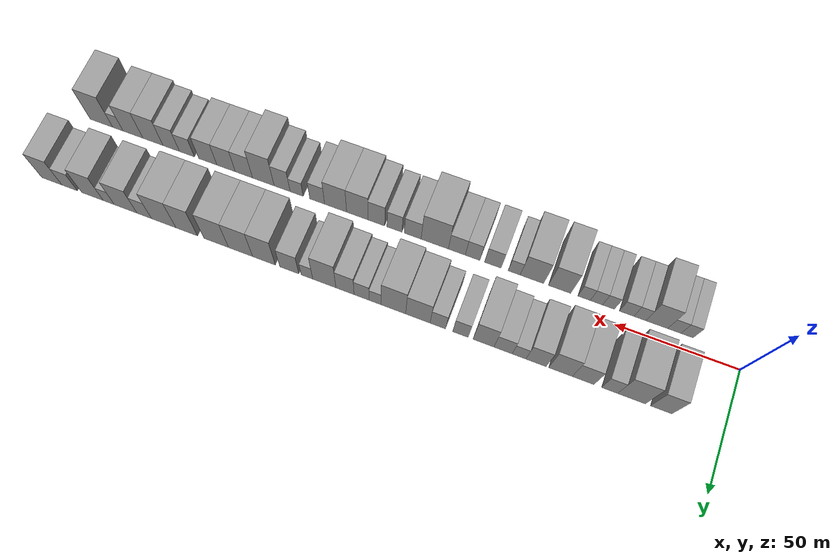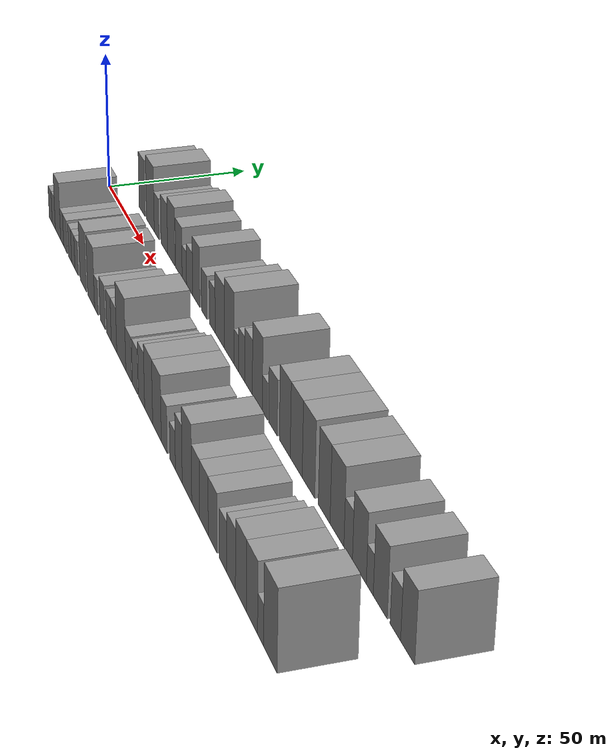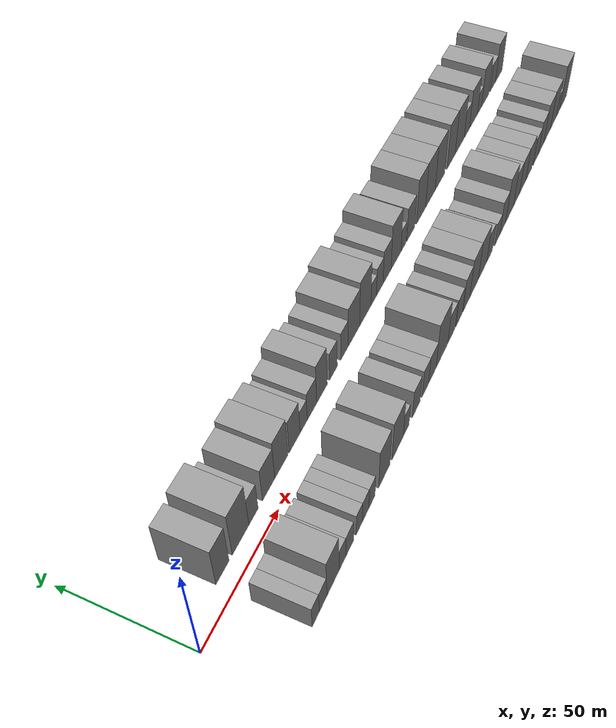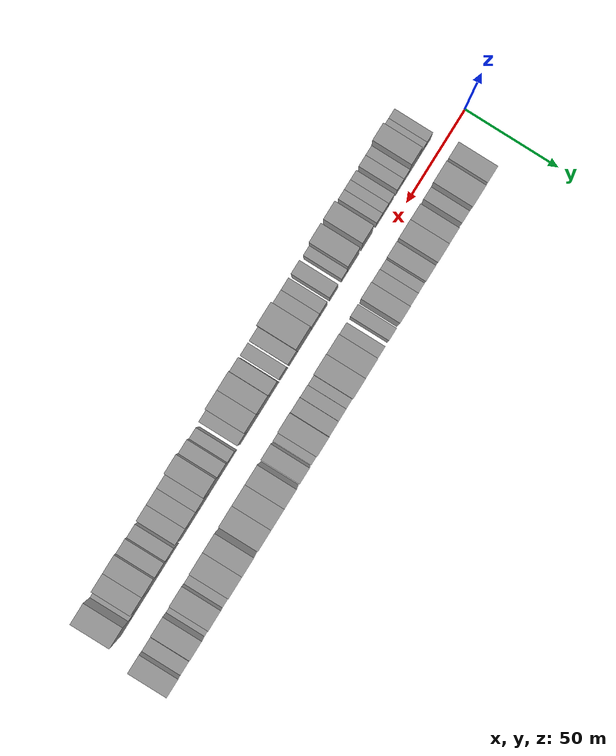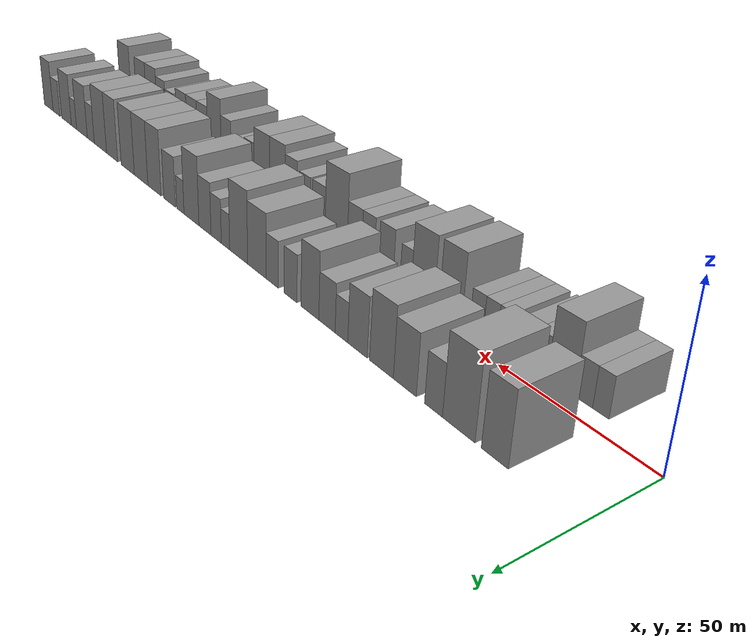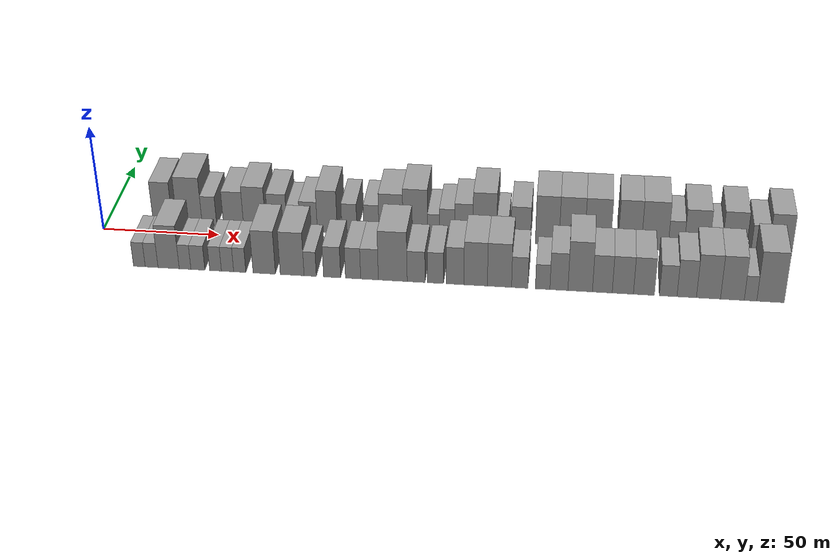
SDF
<sdf version="1.6">
 <world name="default">
  <scene>
   <sky><clouds><speed>12</speed></clouds></sky>
   <ambient>0.4 0.4 0.4 1</ambient>
   <background>0.7 0.7 0.7 1</background>
   <shadows>1</shadows>
  </scene>
  <gravity>0 0 -9.8066</gravity>
  <magnetic_field>6e-06 2.3e-05 -4.2e-05</magnetic_field>
  <physics default="0" name="default_physics" type="ode">
   <ode>
    <solver>
     <type>quick</type>
     <iters>10</iters>
     <sor>1.0</sor>
     <use_dynamic_moi_rescaling>0</use_dynamic_moi_rescaling>
    </solver>
    <constraints>
     <cfm>0</cfm>
     <erp>0.2</erp>
     <contact_max_correcting_vel>100</contact_max_correcting_vel>
     <contact_surface_layer>0.001</contact_surface_layer>
    </constraints>
   </ode>
   <max_step_size>0.004</max_step_size>
   <real_time_factor>1</real_time_factor>
   <real_time_update_rate>250</real_time_update_rate>
  </physics>
  <light name="sun" type="directional">
   <pose>0 0 10 0 0 0</pose>
   <diffuse>0.8 0.8 0.8 1</diffuse>
   <specular>0.2 0.2 0.2 1</specular>
   <attenuation>
    <range>1000</range>
    <constant>0.9</constant>
    <linear>0.01</linear>
    <quadratic>0.001</quadratic>
   </attenuation>
   <direction>-0.5 0.1 -0.9</direction>
  </light>
  <model name="building_1">
   <static>1</static>
   <pose>24.2105 16.0000 0 0.000000 0.000000 1.570796</pose>
   <link name="link">
    <pose>0 0 10.50 0 0 0</pose>
    <collision name="collision"><geometry><box><size>20.0000 8.4211 21.0000</size></box></geometry></collision>
    <visual name="visual">
     <cast_shadows>0</cast_shadows>
     <geometry><box><size>20.0000 8.4211 21.0000</size></box></geometry>
     <material>
      <script>
       <uri>model://grey_wall/materials/scripts</uri>
       <uri>model://grey_wall/materials/textures</uri>
       <name>vrc/grey_wall</name>
      </script>
     </material>
    </visual>
   </link>
  </model>
  <model name="building_2">
   <static>1</static>
   <pose>35.9146 16.0000 0 0.000000 0.000000 1.570796</pose>
   <link name="link">
    <pose>0 0 12.00 0 0 0</pose>
    <collision name="collision"><geometry><box><size>20.0000 10.9870 24.0000</size></box></geometry></collision>
    <visual name="visual">
     <cast_shadows>0</cast_shadows>
     <geometry><box><size>20.0000 10.9870 24.0000</size></box></geometry>
     <material>
      <script>
       <uri>model://grey_wall/materials/scripts</uri>
       <uri>model://grey_wall/materials/textures</uri>
       <name>vrc/grey_wall</name>
      </script>
     </material>
    </visual>
   </link>
  </model>
  <model name="building_3">
   <static>1</static>
   <pose>44.5813 16.0000 0 0.000000 0.000000 1.570796</pose>
   <link name="link">
    <pose>0 0 7.50 0 0 0</pose>
    <collision name="collision"><geometry><box><size>20.0000 6.3463 15.0000</size></box></geometry></collision>
    <visual name="visual">
     <cast_shadows>0</cast_shadows>
     <geometry><box><size>20.0000 6.3463 15.0000</size></box></geometry>
     <material>
      <script>
       <uri>model://grey_wall/materials/scripts</uri>
       <uri>model://grey_wall/materials/textures</uri>
       <name>vrc/grey_wall</name>
      </script>
     </material>
    </visual>
   </link>
  </model>
  <model name="building_4">
   <static>1</static>
   <pose>55.1095 16.0000 0 0.000000 0.000000 1.570796</pose>
   <link name="link">
    <pose>0 0 9.00 0 0 0</pose>
    <collision name="collision"><geometry><box><size>20.0000 8.7102 18.0000</size></box></geometry></collision>
    <visual name="visual">
     <cast_shadows>0</cast_shadows>
     <geometry><box><size>20.0000 8.7102 18.0000</size></box></geometry>
     <material>
      <script>
       <uri>model://grey_wall/materials/scripts</uri>
       <uri>model://grey_wall/materials/textures</uri>
       <name>vrc/grey_wall</name>
      </script>
     </material>
    </visual>
   </link>
  </model>
  <model name="building_5">
   <static>1</static>
   <pose>64.2417 16.0000 0 0.000000 0.000000 1.570796</pose>
   <link name="link">
    <pose>0 0 10.50 0 0 0</pose>
    <collision name="collision"><geometry><box><size>20.0000 9.5541 21.0000</size></box></geometry></collision>
    <visual name="visual">
     <cast_shadows>0</cast_shadows>
     <geometry><box><size>20.0000 9.5541 21.0000</size></box></geometry>
     <material>
      <script>
       <uri>model://grey_wall/materials/scripts</uri>
       <uri>model://grey_wall/materials/textures</uri>
       <name>vrc/grey_wall</name>
      </script>
     </material>
    </visual>
   </link>
  </model>
  <model name="building_6">
   <static>1</static>
   <pose>74.1500 16.0000 0 0.000000 0.000000 1.570796</pose>
   <link name="link">
    <pose>0 0 9.00 0 0 0</pose>
    <collision name="collision"><geometry><box><size>20.0000 8.2625 18.0000</size></box></geometry></collision>
    <visual name="visual">
     <cast_shadows>0</cast_shadows>
     <geometry><box><size>20.0000 8.2625 18.0000</size></box></geometry>
     <material>
      <script>
       <uri>model://grey_wall/materials/scripts</uri>
       <uri>model://grey_wall/materials/textures</uri>
       <name>vrc/grey_wall</name>
      </script>
     </material>
    </visual>
   </link>
  </model>
  <model name="building_7">
   <static>1</static>
   <pose>81.0801 16.0000 0 0.000000 0.000000 1.570796</pose>
   <link name="link">
    <pose>0 0 6.00 0 0 0</pose>
    <collision name="collision"><geometry><box><size>20.0000 5.5977 12.0000</size></box></geometry></collision>
    <visual name="visual">
     <cast_shadows>0</cast_shadows>
     <geometry><box><size>20.0000 5.5977 12.0000</size></box></geometry>
     <material>
      <script>
       <uri>model://grey_wall/materials/scripts</uri>
       <uri>model://grey_wall/materials/textures</uri>
       <name>vrc/grey_wall</name>
      </script>
     </material>
    </visual>
   </link>
  </model>
  <model name="building_8">
   <static>1</static>
   <pose>87.6114 16.0000 0 0.000000 0.000000 1.570796</pose>
   <link name="link">
    <pose>0 0 7.50 0 0 0</pose>
    <collision name="collision"><geometry><box><size>20.0000 7.4648 15.0000</size></box></geometry></collision>
    <visual name="visual">
     <cast_shadows>0</cast_shadows>
     <geometry><box><size>20.0000 7.4648 15.0000</size></box></geometry>
     <material>
      <script>
       <uri>model://grey_wall/materials/scripts</uri>
       <uri>model://grey_wall/materials/textures</uri>
       <name>vrc/grey_wall</name>
      </script>
     </material>
    </visual>
   </link>
  </model>
  <model name="building_9">
   <static>1</static>
   <pose>95.6471 16.0000 0 0.000000 0.000000 1.570796</pose>
   <link name="link">
    <pose>0 0 10.50 0 0 0</pose>
    <collision name="collision"><geometry><box><size>20.0000 8.6066 21.0000</size></box></geometry></collision>
    <visual name="visual">
     <cast_shadows>0</cast_shadows>
     <geometry><box><size>20.0000 8.6066 21.0000</size></box></geometry>
     <material>
      <script>
       <uri>model://grey_wall/materials/scripts</uri>
       <uri>model://grey_wall/materials/textures</uri>
       <name>vrc/grey_wall</name>
      </script>
     </material>
    </visual>
   </link>
  </model>
  <model name="building_10">
   <static>1</static>
   <pose>105.1658 16.0000 0 0.000000 0.000000 1.570796</pose>
   <link name="link">
    <pose>0 0 7.50 0 0 0</pose>
    <collision name="collision"><geometry><box><size>20.0000 6.4309 15.0000</size></box></geometry></collision>
    <visual name="visual">
     <cast_shadows>0</cast_shadows>
     <geometry><box><size>20.0000 6.4309 15.0000</size></box></geometry>
     <material>
      <script>
       <uri>model://grey_wall/materials/scripts</uri>
       <uri>model://grey_wall/materials/textures</uri>
       <name>vrc/grey_wall</name>
      </script>
     </material>
    </visual>
   </link>
  </model>
  <model name="building_11">
   <static>1</static>
   <pose>114.6152 16.0000 0 0.000000 0.000000 1.570796</pose>
   <link name="link">
    <pose>0 0 7.50 0 0 0</pose>
    <collision name="collision"><geometry><box><size>20.0000 6.4679 15.0000</size></box></geometry></collision>
    <visual name="visual">
     <cast_shadows>0</cast_shadows>
     <geometry><box><size>20.0000 6.4679 15.0000</size></box></geometry>
     <material>
      <script>
       <uri>model://grey_wall/materials/scripts</uri>
       <uri>model://grey_wall/materials/textures</uri>
       <name>vrc/grey_wall</name>
      </script>
     </material>
    </visual>
   </link>
  </model>
  <model name="building_12">
   <static>1</static>
   <pose>122.9898 16.0000 0 0.000000 0.000000 1.570796</pose>
   <link name="link">
    <pose>0 0 10.50 0 0 0</pose>
    <collision name="collision"><geometry><box><size>20.0000 10.2814 21.0000</size></box></geometry></collision>
    <visual name="visual">
     <cast_shadows>0</cast_shadows>
     <geometry><box><size>20.0000 10.2814 21.0000</size></box></geometry>
     <material>
      <script>
       <uri>model://grey_wall/materials/scripts</uri>
       <uri>model://grey_wall/materials/textures</uri>
       <name>vrc/grey_wall</name>
      </script>
     </material>
    </visual>
   </link>
  </model>
  <model name="building_13">
   <static>1</static>
   <pose>133.3350 16.0000 0 0.000000 0.000000 1.570796</pose>
   <link name="link">
    <pose>0 0 12.00 0 0 0</pose>
    <collision name="collision"><geometry><box><size>20.0000 10.4091 24.0000</size></box></geometry></collision>
    <visual name="visual">
     <cast_shadows>0</cast_shadows>
     <geometry><box><size>20.0000 10.4091 24.0000</size></box></geometry>
     <material>
      <script>
       <uri>model://grey_wall/materials/scripts</uri>
       <uri>model://grey_wall/materials/textures</uri>
       <name>vrc/grey_wall</name>
      </script>
     </material>
    </visual>
   </link>
  </model>
  <model name="building_14">
   <static>1</static>
   <pose>141.0848 16.0000 0 0.000000 0.000000 1.570796</pose>
   <link name="link">
    <pose>0 0 6.00 0 0 0</pose>
    <collision name="collision"><geometry><box><size>20.0000 5.0905 12.0000</size></box></geometry></collision>
    <visual name="visual">
     <cast_shadows>0</cast_shadows>
     <geometry><box><size>20.0000 5.0905 12.0000</size></box></geometry>
     <material>
      <script>
       <uri>model://grey_wall/materials/scripts</uri>
       <uri>model://grey_wall/materials/textures</uri>
       <name>vrc/grey_wall</name>
      </script>
     </material>
    </visual>
   </link>
  </model>
  <model name="building_15">
   <static>1</static>
   <pose>146.8284 16.0000 0 0.000000 0.000000 1.570796</pose>
   <link name="link">
    <pose>0 0 7.50 0 0 0</pose>
    <collision name="collision"><geometry><box><size>20.0000 6.3967 15.0000</size></box></geometry></collision>
    <visual name="visual">
     <cast_shadows>0</cast_shadows>
     <geometry><box><size>20.0000 6.3967 15.0000</size></box></geometry>
     <material>
      <script>
       <uri>model://grey_wall/materials/scripts</uri>
       <uri>model://grey_wall/materials/textures</uri>
       <name>vrc/grey_wall</name>
      </script>
     </material>
    </visual>
   </link>
  </model>
  <model name="building_16">
   <static>1</static>
   <pose>153.9316 16.0000 0 0.000000 0.000000 1.570796</pose>
   <link name="link">
    <pose>0 0 9.00 0 0 0</pose>
    <collision name="collision"><geometry><box><size>20.0000 7.8097 18.0000</size></box></geometry></collision>
    <visual name="visual">
     <cast_shadows>0</cast_shadows>
     <geometry><box><size>20.0000 7.8097 18.0000</size></box></geometry>
     <material>
      <script>
       <uri>model://grey_wall/materials/scripts</uri>
       <uri>model://grey_wall/materials/textures</uri>
       <name>vrc/grey_wall</name>
      </script>
     </material>
    </visual>
   </link>
  </model>
  <model name="building_17">
   <static>1</static>
   <pose>162.8556 16.0000 0 0.000000 0.000000 1.570796</pose>
   <link name="link">
    <pose>0 0 12.00 0 0 0</pose>
    <collision name="collision"><geometry><box><size>20.0000 10.0382 24.0000</size></box></geometry></collision>
    <visual name="visual">
     <cast_shadows>0</cast_shadows>
     <geometry><box><size>20.0000 10.0382 24.0000</size></box></geometry>
     <material>
      <script>
       <uri>model://grey_wall/materials/scripts</uri>
       <uri>model://grey_wall/materials/textures</uri>
       <name>vrc/grey_wall</name>
      </script>
     </material>
    </visual>
   </link>
  </model>
  <model name="building_18">
   <static>1</static>
   <pose>170.3821 16.0000 0 0.000000 0.000000 1.570796</pose>
   <link name="link">
    <pose>0 0 6.00 0 0 0</pose>
    <collision name="collision"><geometry><box><size>20.0000 5.0147 12.0000</size></box></geometry></collision>
    <visual name="visual">
     <cast_shadows>0</cast_shadows>
     <geometry><box><size>20.0000 5.0147 12.0000</size></box></geometry>
     <material>
      <script>
       <uri>model://grey_wall/materials/scripts</uri>
       <uri>model://grey_wall/materials/textures</uri>
       <name>vrc/grey_wall</name>
      </script>
     </material>
    </visual>
   </link>
  </model>
  <model name="building_19">
   <static>1</static>
   <pose>178.0471 16.0000 0 0.000000 0.000000 1.570796</pose>
   <link name="link">
    <pose>0 0 9.00 0 0 0</pose>
    <collision name="collision"><geometry><box><size>20.0000 8.3153 18.0000</size></box></geometry></collision>
    <visual name="visual">
     <cast_shadows>0</cast_shadows>
     <geometry><box><size>20.0000 8.3153 18.0000</size></box></geometry>
     <material>
      <script>
       <uri>model://grey_wall/materials/scripts</uri>
       <uri>model://grey_wall/materials/textures</uri>
       <name>vrc/grey_wall</name>
      </script>
     </material>
    </visual>
   </link>
  </model>
  <model name="building_20">
   <static>1</static>
   <pose>189.2018 16.0000 0 0.000000 0.000000 1.570796</pose>
   <link name="link">
    <pose>0 0 12.00 0 0 0</pose>
    <collision name="collision"><geometry><box><size>20.0000 9.9940 24.0000</size></box></geometry></collision>
    <visual name="visual">
     <cast_shadows>0</cast_shadows>
     <geometry><box><size>20.0000 9.9940 24.0000</size></box></geometry>
     <material>
      <script>
       <uri>model://grey_wall/materials/scripts</uri>
       <uri>model://grey_wall/materials/textures</uri>
       <name>vrc/grey_wall</name>
      </script>
     </material>
    </visual>
   </link>
  </model>
  <model name="building_21">
   <static>1</static>
   <pose>199.5516 16.0000 0 0.000000 0.000000 1.570796</pose>
   <link name="link">
    <pose>0 0 12.00 0 0 0</pose>
    <collision name="collision"><geometry><box><size>20.0000 10.7056 24.0000</size></box></geometry></collision>
    <visual name="visual">
     <cast_shadows>0</cast_shadows>
     <geometry><box><size>20.0000 10.7056 24.0000</size></box></geometry>
     <material>
      <script>
       <uri>model://grey_wall/materials/scripts</uri>
       <uri>model://grey_wall/materials/textures</uri>
       <name>vrc/grey_wall</name>
      </script>
     </material>
    </visual>
   </link>
  </model>
  <model name="building_22">
   <static>1</static>
   <pose>210.3530 16.0000 0 0.000000 0.000000 1.570796</pose>
   <link name="link">
    <pose>0 0 12.00 0 0 0</pose>
    <collision name="collision"><geometry><box><size>20.0000 10.8971 24.0000</size></box></geometry></collision>
    <visual name="visual">
     <cast_shadows>0</cast_shadows>
     <geometry><box><size>20.0000 10.8971 24.0000</size></box></geometry>
     <material>
      <script>
       <uri>model://grey_wall/materials/scripts</uri>
       <uri>model://grey_wall/materials/textures</uri>
       <name>vrc/grey_wall</name>
      </script>
     </material>
    </visual>
   </link>
  </model>
  <model name="building_23">
   <static>1</static>
   <pose>223.6579 16.0000 0 0.000000 0.000000 1.570796</pose>
   <link name="link">
    <pose>0 0 12.00 0 0 0</pose>
    <collision name="collision"><geometry><box><size>20.0000 9.7128 24.0000</size></box></geometry></collision>
    <visual name="visual">
     <cast_shadows>0</cast_shadows>
     <geometry><box><size>20.0000 9.7128 24.0000</size></box></geometry>
     <material>
      <script>
       <uri>model://grey_wall/materials/scripts</uri>
       <uri>model://grey_wall/materials/textures</uri>
       <name>vrc/grey_wall</name>
      </script>
     </material>
    </visual>
   </link>
  </model>
  <model name="building_24">
   <static>1</static>
   <pose>234.0782 16.0000 0 0.000000 0.000000 1.570796</pose>
   <link name="link">
    <pose>0 0 12.00 0 0 0</pose>
    <collision name="collision"><geometry><box><size>20.0000 11.1277 24.0000</size></box></geometry></collision>
    <visual name="visual">
     <cast_shadows>0</cast_shadows>
     <geometry><box><size>20.0000 11.1277 24.0000</size></box></geometry>
     <material>
      <script>
       <uri>model://grey_wall/materials/scripts</uri>
       <uri>model://grey_wall/materials/textures</uri>
       <name>vrc/grey_wall</name>
      </script>
     </material>
    </visual>
   </link>
  </model>
  <model name="building_25">
   <static>1</static>
   <pose>242.9531 16.0000 0 0.000000 0.000000 1.570796</pose>
   <link name="link">
    <pose>0 0 7.50 0 0 0</pose>
    <collision name="collision"><geometry><box><size>20.0000 6.6221 15.0000</size></box></geometry></collision>
    <visual name="visual">
     <cast_shadows>0</cast_shadows>
     <geometry><box><size>20.0000 6.6221 15.0000</size></box></geometry>
     <material>
      <script>
       <uri>model://grey_wall/materials/scripts</uri>
       <uri>model://grey_wall/materials/textures</uri>
       <name>vrc/grey_wall</name>
      </script>
     </material>
    </visual>
   </link>
  </model>
  <model name="building_26">
   <static>1</static>
   <pose>251.5019 16.0000 0 0.000000 0.000000 1.570796</pose>
   <link name="link">
    <pose>0 0 10.50 0 0 0</pose>
    <collision name="collision"><geometry><box><size>20.0000 10.4754 21.0000</size></box></geometry></collision>
    <visual name="visual">
     <cast_shadows>0</cast_shadows>
     <geometry><box><size>20.0000 10.4754 21.0000</size></box></geometry>
     <material>
      <script>
       <uri>model://grey_wall/materials/scripts</uri>
       <uri>model://grey_wall/materials/textures</uri>
       <name>vrc/grey_wall</name>
      </script>
     </material>
    </visual>
   </link>
  </model>
  <model name="building_27">
   <static>1</static>
   <pose>259.3025 16.0000 0 0.000000 0.000000 1.570796</pose>
   <link name="link">
    <pose>0 0 6.00 0 0 0</pose>
    <collision name="collision"><geometry><box><size>20.0000 5.1259 12.0000</size></box></geometry></collision>
    <visual name="visual">
     <cast_shadows>0</cast_shadows>
     <geometry><box><size>20.0000 5.1259 12.0000</size></box></geometry>
     <material>
      <script>
       <uri>model://grey_wall/materials/scripts</uri>
       <uri>model://grey_wall/materials/textures</uri>
       <name>vrc/grey_wall</name>
      </script>
     </material>
    </visual>
   </link>
  </model>
  <model name="building_28">
   <static>1</static>
   <pose>266.8906 16.0000 0 0.000000 0.000000 1.570796</pose>
   <link name="link">
    <pose>0 0 10.50 0 0 0</pose>
    <collision name="collision"><geometry><box><size>20.0000 10.0502 21.0000</size></box></geometry></collision>
    <visual name="visual">
     <cast_shadows>0</cast_shadows>
     <geometry><box><size>20.0000 10.0502 21.0000</size></box></geometry>
     <material>
      <script>
       <uri>model://grey_wall/materials/scripts</uri>
       <uri>model://grey_wall/materials/textures</uri>
       <name>vrc/grey_wall</name>
      </script>
     </material>
    </visual>
   </link>
  </model>
  <model name="building_29">
   <static>1</static>
   <pose>277.5307 16.0000 0 0.000000 0.000000 1.570796</pose>
   <link name="link">
    <pose>0 0 7.50 0 0 0</pose>
    <collision name="collision"><geometry><box><size>20.0000 7.2301 15.0000</size></box></geometry></collision>
    <visual name="visual">
     <cast_shadows>0</cast_shadows>
     <geometry><box><size>20.0000 7.2301 15.0000</size></box></geometry>
     <material>
      <script>
       <uri>model://grey_wall/materials/scripts</uri>
       <uri>model://grey_wall/materials/textures</uri>
       <name>vrc/grey_wall</name>
      </script>
     </material>
    </visual>
   </link>
  </model>
  <model name="building_30">
   <static>1</static>
   <pose>285.9117 16.0000 0 0.000000 0.000000 1.570796</pose>
   <link name="link">
    <pose>0 0 10.50 0 0 0</pose>
    <collision name="collision"><geometry><box><size>20.0000 9.5318 21.0000</size></box></geometry></collision>
    <visual name="visual">
     <cast_shadows>0</cast_shadows>
     <geometry><box><size>20.0000 9.5318 21.0000</size></box></geometry>
     <material>
      <script>
       <uri>model://grey_wall/materials/scripts</uri>
       <uri>model://grey_wall/materials/textures</uri>
       <name>vrc/grey_wall</name>
      </script>
     </material>
    </visual>
   </link>
  </model>
  <model name="building_31">
   <static>1</static>
   <pose>22.4566 -16.0000 0 0.000000 0.000000 1.570796</pose>
   <link name="link">
    <pose>0 0 6.00 0 0 0</pose>
    <collision name="collision"><geometry><box><size>20.0000 4.9133 12.0000</size></box></geometry></collision>
    <visual name="visual">
     <cast_shadows>0</cast_shadows>
     <geometry><box><size>20.0000 4.9133 12.0000</size></box></geometry>
     <material>
      <script>
       <uri>model://grey_wall/materials/scripts</uri>
       <uri>model://grey_wall/materials/textures</uri>
       <name>vrc/grey_wall</name>
      </script>
     </material>
    </visual>
   </link>
  </model>
  <model name="building_32">
   <static>1</static>
   <pose>27.5971 -16.0000 0 0.000000 0.000000 1.570796</pose>
   <link name="link">
    <pose>0 0 6.00 0 0 0</pose>
    <collision name="collision"><geometry><box><size>20.0000 5.3676 12.0000</size></box></geometry></collision>
    <visual name="visual">
     <cast_shadows>0</cast_shadows>
     <geometry><box><size>20.0000 5.3676 12.0000</size></box></geometry>
     <material>
      <script>
       <uri>model://grey_wall/materials/scripts</uri>
       <uri>model://grey_wall/materials/textures</uri>
       <name>vrc/grey_wall</name>
      </script>
     </material>
    </visual>
   </link>
  </model>
  <model name="building_33">
   <static>1</static>
   <pose>34.7237 -16.0000 0 0.000000 0.000000 1.570796</pose>
   <link name="link">
    <pose>0 0 10.50 0 0 0</pose>
    <collision name="collision"><geometry><box><size>20.0000 8.8856 21.0000</size></box></geometry></collision>
    <visual name="visual">
     <cast_shadows>0</cast_shadows>
     <geometry><box><size>20.0000 8.8856 21.0000</size></box></geometry>
     <material>
      <script>
       <uri>model://grey_wall/materials/scripts</uri>
       <uri>model://grey_wall/materials/textures</uri>
       <name>vrc/grey_wall</name>
      </script>
     </material>
    </visual>
   </link>
  </model>
  <model name="building_34">
   <static>1</static>
   <pose>41.6181 -16.0000 0 0.000000 0.000000 1.570796</pose>
   <link name="link">
    <pose>0 0 6.00 0 0 0</pose>
    <collision name="collision"><geometry><box><size>20.0000 4.9032 12.0000</size></box></geometry></collision>
    <visual name="visual">
     <cast_shadows>0</cast_shadows>
     <geometry><box><size>20.0000 4.9032 12.0000</size></box></geometry>
     <material>
      <script>
       <uri>model://grey_wall/materials/scripts</uri>
       <uri>model://grey_wall/materials/textures</uri>
       <name>vrc/grey_wall</name>
      </script>
     </material>
    </visual>
   </link>
  </model>
  <model name="building_35">
   <static>1</static>
   <pose>46.9980 -16.0000 0 0.000000 0.000000 1.570796</pose>
   <link name="link">
    <pose>0 0 6.00 0 0 0</pose>
    <collision name="collision"><geometry><box><size>20.0000 5.8566 12.0000</size></box></geometry></collision>
    <visual name="visual">
     <cast_shadows>0</cast_shadows>
     <geometry><box><size>20.0000 5.8566 12.0000</size></box></geometry>
     <material>
      <script>
       <uri>model://grey_wall/materials/scripts</uri>
       <uri>model://grey_wall/materials/textures</uri>
       <name>vrc/grey_wall</name>
      </script>
     </material>
    </visual>
   </link>
  </model>
  <model name="building_36">
   <static>1</static>
   <pose>54.3711 -16.0000 0 0.000000 0.000000 1.570796</pose>
   <link name="link">
    <pose>0 0 6.00 0 0 0</pose>
    <collision name="collision"><geometry><box><size>20.0000 4.8896 12.0000</size></box></geometry></collision>
    <visual name="visual">
     <cast_shadows>0</cast_shadows>
     <geometry><box><size>20.0000 4.8896 12.0000</size></box></geometry>
     <material>
      <script>
       <uri>model://grey_wall/materials/scripts</uri>
       <uri>model://grey_wall/materials/textures</uri>
       <name>vrc/grey_wall</name>
      </script>
     </material>
    </visual>
   </link>
  </model>
  <model name="building_37">
   <static>1</static>
   <pose>59.3655 -16.0000 0 0.000000 0.000000 1.570796</pose>
   <link name="link">
    <pose>0 0 6.00 0 0 0</pose>
    <collision name="collision"><geometry><box><size>20.0000 5.0992 12.0000</size></box></geometry></collision>
    <visual name="visual">
     <cast_shadows>0</cast_shadows>
     <geometry><box><size>20.0000 5.0992 12.0000</size></box></geometry>
     <material>
      <script>
       <uri>model://grey_wall/materials/scripts</uri>
       <uri>model://grey_wall/materials/textures</uri>
       <name>vrc/grey_wall</name>
      </script>
     </material>
    </visual>
   </link>
  </model>
  <model name="building_38">
   <static>1</static>
   <pose>64.4580 -16.0000 0 0.000000 0.000000 1.570796</pose>
   <link name="link">
    <pose>0 0 6.00 0 0 0</pose>
    <collision name="collision"><geometry><box><size>20.0000 5.0858 12.0000</size></box></geometry></collision>
    <visual name="visual">
     <cast_shadows>0</cast_shadows>
     <geometry><box><size>20.0000 5.0858 12.0000</size></box></geometry>
     <material>
      <script>
       <uri>model://grey_wall/materials/scripts</uri>
       <uri>model://grey_wall/materials/textures</uri>
       <name>vrc/grey_wall</name>
      </script>
     </material>
    </visual>
   </link>
  </model>
  <model name="building_39">
   <static>1</static>
   <pose>74.6477 -16.0000 0 0.000000 0.000000 1.570796</pose>
   <link name="link">
    <pose>0 0 10.50 0 0 0</pose>
    <collision name="collision"><geometry><box><size>20.0000 9.2937 21.0000</size></box></geometry></collision>
    <visual name="visual">
     <cast_shadows>0</cast_shadows>
     <geometry><box><size>20.0000 9.2937 21.0000</size></box></geometry>
     <material>
      <script>
       <uri>model://grey_wall/materials/scripts</uri>
       <uri>model://grey_wall/materials/textures</uri>
       <name>vrc/grey_wall</name>
      </script>
     </material>
    </visual>
   </link>
  </model>
  <model name="building_40">
   <static>1</static>
   <pose>86.2326 -16.0000 0 0.000000 0.000000 1.570796</pose>
   <link name="link">
    <pose>0 0 10.50 0 0 0</pose>
    <collision name="collision"><geometry><box><size>20.0000 9.8760 21.0000</size></box></geometry></collision>
    <visual name="visual">
     <cast_shadows>0</cast_shadows>
     <geometry><box><size>20.0000 9.8760 21.0000</size></box></geometry>
     <material>
      <script>
       <uri>model://grey_wall/materials/scripts</uri>
       <uri>model://grey_wall/materials/textures</uri>
       <name>vrc/grey_wall</name>
      </script>
     </material>
    </visual>
   </link>
  </model>
  <model name="building_41">
   <static>1</static>
   <pose>93.6965 -16.0000 0 0.000000 0.000000 1.570796</pose>
   <link name="link">
    <pose>0 0 6.00 0 0 0</pose>
    <collision name="collision"><geometry><box><size>20.0000 5.0519 12.0000</size></box></geometry></collision>
    <visual name="visual">
     <cast_shadows>0</cast_shadows>
     <geometry><box><size>20.0000 5.0519 12.0000</size></box></geometry>
     <material>
      <script>
       <uri>model://grey_wall/materials/scripts</uri>
       <uri>model://grey_wall/materials/textures</uri>
       <name>vrc/grey_wall</name>
      </script>
     </material>
    </visual>
   </link>
  </model>
  <model name="building_42">
   <static>1</static>
   <pose>102.7391 -16.0000 0 0.000000 0.000000 1.570796</pose>
   <link name="link">
    <pose>0 0 7.50 0 0 0</pose>
    <collision name="collision"><geometry><box><size>20.0000 7.0334 15.0000</size></box></geometry></collision>
    <visual name="visual">
     <cast_shadows>0</cast_shadows>
     <geometry><box><size>20.0000 7.0334 15.0000</size></box></geometry>
     <material>
      <script>
       <uri>model://grey_wall/materials/scripts</uri>
       <uri>model://grey_wall/materials/textures</uri>
       <name>vrc/grey_wall</name>
      </script>
     </material>
    </visual>
   </link>
  </model>
  <model name="building_43">
   <static>1</static>
   <pose>111.3708 -16.0000 0 0.000000 0.000000 1.570796</pose>
   <link name="link">
    <pose>0 0 7.50 0 0 0</pose>
    <collision name="collision"><geometry><box><size>20.0000 6.2300 15.0000</size></box></geometry></collision>
    <visual name="visual">
     <cast_shadows>0</cast_shadows>
     <geometry><box><size>20.0000 6.2300 15.0000</size></box></geometry>
     <material>
      <script>
       <uri>model://grey_wall/materials/scripts</uri>
       <uri>model://grey_wall/materials/textures</uri>
       <name>vrc/grey_wall</name>
      </script>
     </material>
    </visual>
   </link>
  </model>
  <model name="building_44">
   <static>1</static>
   <pose>118.1234 -16.0000 0 0.000000 0.000000 1.570796</pose>
   <link name="link">
    <pose>0 0 7.50 0 0 0</pose>
    <collision name="collision"><geometry><box><size>20.0000 7.2752 15.0000</size></box></geometry></collision>
    <visual name="visual">
     <cast_shadows>0</cast_shadows>
     <geometry><box><size>20.0000 7.2752 15.0000</size></box></geometry>
     <material>
      <script>
       <uri>model://grey_wall/materials/scripts</uri>
       <uri>model://grey_wall/materials/textures</uri>
       <name>vrc/grey_wall</name>
      </script>
     </material>
    </visual>
   </link>
  </model>
  <model name="building_45">
   <static>1</static>
   <pose>127.6679 -16.0000 0 0.000000 0.000000 1.570796</pose>
   <link name="link">
    <pose>0 0 12.00 0 0 0</pose>
    <collision name="collision"><geometry><box><size>20.0000 11.8139 24.0000</size></box></geometry></collision>
    <visual name="visual">
     <cast_shadows>0</cast_shadows>
     <geometry><box><size>20.0000 11.8139 24.0000</size></box></geometry>
     <material>
      <script>
       <uri>model://grey_wall/materials/scripts</uri>
       <uri>model://grey_wall/materials/textures</uri>
       <name>vrc/grey_wall</name>
      </script>
     </material>
    </visual>
   </link>
  </model>
  <model name="building_46">
   <static>1</static>
   <pose>137.2229 -16.0000 0 0.000000 0.000000 1.570796</pose>
   <link name="link">
    <pose>0 0 7.50 0 0 0</pose>
    <collision name="collision"><geometry><box><size>20.0000 7.2961 15.0000</size></box></geometry></collision>
    <visual name="visual">
     <cast_shadows>0</cast_shadows>
     <geometry><box><size>20.0000 7.2961 15.0000</size></box></geometry>
     <material>
      <script>
       <uri>model://grey_wall/materials/scripts</uri>
       <uri>model://grey_wall/materials/textures</uri>
       <name>vrc/grey_wall</name>
      </script>
     </material>
    </visual>
   </link>
  </model>
  <model name="building_47">
   <static>1</static>
   <pose>145.1562 -16.0000 0 0.000000 0.000000 1.570796</pose>
   <link name="link">
    <pose>0 0 7.50 0 0 0</pose>
    <collision name="collision"><geometry><box><size>20.0000 6.5704 15.0000</size></box></geometry></collision>
    <visual name="visual">
     <cast_shadows>0</cast_shadows>
     <geometry><box><size>20.0000 6.5704 15.0000</size></box></geometry>
     <material>
      <script>
       <uri>model://grey_wall/materials/scripts</uri>
       <uri>model://grey_wall/materials/textures</uri>
       <name>vrc/grey_wall</name>
      </script>
     </material>
    </visual>
   </link>
  </model>
  <model name="building_48">
   <static>1</static>
   <pose>153.0912 -16.0000 0 0.000000 0.000000 1.570796</pose>
   <link name="link">
    <pose>0 0 9.00 0 0 0</pose>
    <collision name="collision"><geometry><box><size>20.0000 7.2997 18.0000</size></box></geometry></collision>
    <visual name="visual">
     <cast_shadows>0</cast_shadows>
     <geometry><box><size>20.0000 7.2997 18.0000</size></box></geometry>
     <material>
      <script>
       <uri>model://grey_wall/materials/scripts</uri>
       <uri>model://grey_wall/materials/textures</uri>
       <name>vrc/grey_wall</name>
      </script>
     </material>
    </visual>
   </link>
  </model>
  <model name="building_49">
   <static>1</static>
   <pose>161.4949 -16.0000 0 0.000000 0.000000 1.570796</pose>
   <link name="link">
    <pose>0 0 10.50 0 0 0</pose>
    <collision name="collision"><geometry><box><size>20.0000 9.5077 21.0000</size></box></geometry></collision>
    <visual name="visual">
     <cast_shadows>0</cast_shadows>
     <geometry><box><size>20.0000 9.5077 21.0000</size></box></geometry>
     <material>
      <script>
       <uri>model://grey_wall/materials/scripts</uri>
       <uri>model://grey_wall/materials/textures</uri>
       <name>vrc/grey_wall</name>
      </script>
     </material>
    </visual>
   </link>
  </model>
  <model name="building_50">
   <static>1</static>
   <pose>171.1492 -16.0000 0 0.000000 0.000000 1.570796</pose>
   <link name="link">
    <pose>0 0 10.50 0 0 0</pose>
    <collision name="collision"><geometry><box><size>20.0000 9.8008 21.0000</size></box></geometry></collision>
    <visual name="visual">
     <cast_shadows>0</cast_shadows>
     <geometry><box><size>20.0000 9.8008 21.0000</size></box></geometry>
     <material>
      <script>
       <uri>model://grey_wall/materials/scripts</uri>
       <uri>model://grey_wall/materials/textures</uri>
       <name>vrc/grey_wall</name>
      </script>
     </material>
    </visual>
   </link>
  </model>
  <model name="building_51">
   <static>1</static>
   <pose>179.3652 -16.0000 0 0.000000 0.000000 1.570796</pose>
   <link name="link">
    <pose>0 0 7.50 0 0 0</pose>
    <collision name="collision"><geometry><box><size>20.0000 6.6311 15.0000</size></box></geometry></collision>
    <visual name="visual">
     <cast_shadows>0</cast_shadows>
     <geometry><box><size>20.0000 6.6311 15.0000</size></box></geometry>
     <material>
      <script>
       <uri>model://grey_wall/materials/scripts</uri>
       <uri>model://grey_wall/materials/textures</uri>
       <name>vrc/grey_wall</name>
      </script>
     </material>
    </visual>
   </link>
  </model>
  <model name="building_52">
   <static>1</static>
   <pose>188.6065 -16.0000 0 0.000000 0.000000 1.570796</pose>
   <link name="link">
    <pose>0 0 6.00 0 0 0</pose>
    <collision name="collision"><geometry><box><size>20.0000 5.8515 12.0000</size></box></geometry></collision>
    <visual name="visual">
     <cast_shadows>0</cast_shadows>
     <geometry><box><size>20.0000 5.8515 12.0000</size></box></geometry>
     <material>
      <script>
       <uri>model://grey_wall/materials/scripts</uri>
       <uri>model://grey_wall/materials/textures</uri>
       <name>vrc/grey_wall</name>
      </script>
     </material>
    </visual>
   </link>
  </model>
  <model name="building_53">
   <static>1</static>
   <pose>195.1559 -16.0000 0 0.000000 0.000000 1.570796</pose>
   <link name="link">
    <pose>0 0 9.00 0 0 0</pose>
    <collision name="collision"><geometry><box><size>20.0000 7.2474 18.0000</size></box></geometry></collision>
    <visual name="visual">
     <cast_shadows>0</cast_shadows>
     <geometry><box><size>20.0000 7.2474 18.0000</size></box></geometry>
     <material>
      <script>
       <uri>model://grey_wall/materials/scripts</uri>
       <uri>model://grey_wall/materials/textures</uri>
       <name>vrc/grey_wall</name>
      </script>
     </material>
    </visual>
   </link>
  </model>
  <model name="building_54">
   <static>1</static>
   <pose>203.7086 -16.0000 0 0.000000 0.000000 1.570796</pose>
   <link name="link">
    <pose>0 0 12.00 0 0 0</pose>
    <collision name="collision"><geometry><box><size>20.0000 9.8580 24.0000</size></box></geometry></collision>
    <visual name="visual">
     <cast_shadows>0</cast_shadows>
     <geometry><box><size>20.0000 9.8580 24.0000</size></box></geometry>
     <material>
      <script>
       <uri>model://grey_wall/materials/scripts</uri>
       <uri>model://grey_wall/materials/textures</uri>
       <name>vrc/grey_wall</name>
      </script>
     </material>
    </visual>
   </link>
  </model>
  <model name="building_55">
   <static>1</static>
   <pose>212.5999 -16.0000 0 0.000000 0.000000 1.570796</pose>
   <link name="link">
    <pose>0 0 9.00 0 0 0</pose>
    <collision name="collision"><geometry><box><size>20.0000 7.9246 18.0000</size></box></geometry></collision>
    <visual name="visual">
     <cast_shadows>0</cast_shadows>
     <geometry><box><size>20.0000 7.9246 18.0000</size></box></geometry>
     <material>
      <script>
       <uri>model://grey_wall/materials/scripts</uri>
       <uri>model://grey_wall/materials/textures</uri>
       <name>vrc/grey_wall</name>
      </script>
     </material>
    </visual>
   </link>
  </model>
  <model name="building_56">
   <static>1</static>
   <pose>220.8051 -16.0000 0 0.000000 0.000000 1.570796</pose>
   <link name="link">
    <pose>0 0 9.00 0 0 0</pose>
    <collision name="collision"><geometry><box><size>20.0000 8.4857 18.0000</size></box></geometry></collision>
    <visual name="visual">
     <cast_shadows>0</cast_shadows>
     <geometry><box><size>20.0000 8.4857 18.0000</size></box></geometry>
     <material>
      <script>
       <uri>model://grey_wall/materials/scripts</uri>
       <uri>model://grey_wall/materials/textures</uri>
       <name>vrc/grey_wall</name>
      </script>
     </material>
    </visual>
   </link>
  </model>
  <model name="building_57">
   <static>1</static>
   <pose>229.2428 -16.0000 0 0.000000 0.000000 1.570796</pose>
   <link name="link">
    <pose>0 0 9.00 0 0 0</pose>
    <collision name="collision"><geometry><box><size>20.0000 8.3898 18.0000</size></box></geometry></collision>
    <visual name="visual">
     <cast_shadows>0</cast_shadows>
     <geometry><box><size>20.0000 8.3898 18.0000</size></box></geometry>
     <material>
      <script>
       <uri>model://grey_wall/materials/scripts</uri>
       <uri>model://grey_wall/materials/textures</uri>
       <name>vrc/grey_wall</name>
      </script>
     </material>
    </visual>
   </link>
  </model>
  <model name="building_58">
   <static>1</static>
   <pose>238.9333 -16.0000 0 0.000000 0.000000 1.570796</pose>
   <link name="link">
    <pose>0 0 7.50 0 0 0</pose>
    <collision name="collision"><geometry><box><size>20.0000 6.9911 15.0000</size></box></geometry></collision>
    <visual name="visual">
     <cast_shadows>0</cast_shadows>
     <geometry><box><size>20.0000 6.9911 15.0000</size></box></geometry>
     <material>
      <script>
       <uri>model://grey_wall/materials/scripts</uri>
       <uri>model://grey_wall/materials/textures</uri>
       <name>vrc/grey_wall</name>
      </script>
     </material>
    </visual>
   </link>
  </model>
  <model name="building_59">
   <static>1</static>
   <pose>246.2877 -16.0000 0 0.000000 0.000000 1.570796</pose>
   <link name="link">
    <pose>0 0 9.00 0 0 0</pose>
    <collision name="collision"><geometry><box><size>20.0000 7.7177 18.0000</size></box></geometry></collision>
    <visual name="visual">
     <cast_shadows>0</cast_shadows>
     <geometry><box><size>20.0000 7.7177 18.0000</size></box></geometry>
     <material>
      <script>
       <uri>model://grey_wall/materials/scripts</uri>
       <uri>model://grey_wall/materials/textures</uri>
       <name>vrc/grey_wall</name>
      </script>
     </material>
    </visual>
   </link>
  </model>
  <model name="building_60">
   <static>1</static>
   <pose>254.9115 -16.0000 0 0.000000 0.000000 1.570796</pose>
   <link name="link">
    <pose>0 0 10.50 0 0 0</pose>
    <collision name="collision"><geometry><box><size>20.0000 9.5301 21.0000</size></box></geometry></collision>
    <visual name="visual">
     <cast_shadows>0</cast_shadows>
     <geometry><box><size>20.0000 9.5301 21.0000</size></box></geometry>
     <material>
      <script>
       <uri>model://grey_wall/materials/scripts</uri>
       <uri>model://grey_wall/materials/textures</uri>
       <name>vrc/grey_wall</name>
      </script>
     </material>
    </visual>
   </link>
  </model>
  <model name="building_61">
   <static>1</static>
   <pose>264.3810 -16.0000 0 0.000000 0.000000 1.570796</pose>
   <link name="link">
    <pose>0 0 10.50 0 0 0</pose>
    <collision name="collision"><geometry><box><size>20.0000 9.4089 21.0000</size></box></geometry></collision>
    <visual name="visual">
     <cast_shadows>0</cast_shadows>
     <geometry><box><size>20.0000 9.4089 21.0000</size></box></geometry>
     <material>
      <script>
       <uri>model://grey_wall/materials/scripts</uri>
       <uri>model://grey_wall/materials/textures</uri>
       <name>vrc/grey_wall</name>
      </script>
     </material>
    </visual>
   </link>
  </model>
  <model name="building_62">
   <static>1</static>
   <pose>271.5593 -16.0000 0 0.000000 0.000000 1.570796</pose>
   <link name="link">
    <pose>0 0 6.00 0 0 0</pose>
    <collision name="collision"><geometry><box><size>20.0000 4.9477 12.0000</size></box></geometry></collision>
    <visual name="visual">
     <cast_shadows>0</cast_shadows>
     <geometry><box><size>20.0000 4.9477 12.0000</size></box></geometry>
     <material>
      <script>
       <uri>model://grey_wall/materials/scripts</uri>
       <uri>model://grey_wall/materials/textures</uri>
       <name>vrc/grey_wall</name>
      </script>
     </material>
    </visual>
   </link>
  </model>
  <model name="building_63">
   <static>1</static>
   <pose>279.4418 -16.0000 0 0.000000 0.000000 1.570796</pose>
   <link name="link">
    <pose>0 0 12.00 0 0 0</pose>
    <collision name="collision"><geometry><box><size>20.0000 10.8171 24.0000</size></box></geometry></collision>
    <visual name="visual">
     <cast_shadows>0</cast_shadows>
     <geometry><box><size>20.0000 10.8171 24.0000</size></box></geometry>
     <material>
      <script>
       <uri>model://grey_wall/materials/scripts</uri>
       <uri>model://grey_wall/materials/textures</uri>
       <name>vrc/grey_wall</name>
      </script>
     </material>
    </visual>
   </link>
  </model>
 </world>
</sdf>
